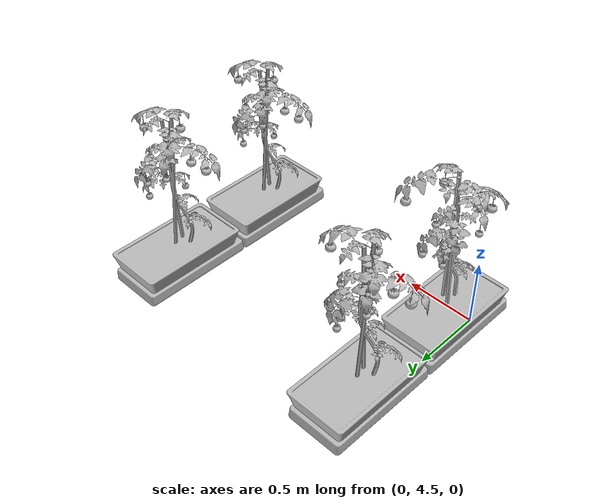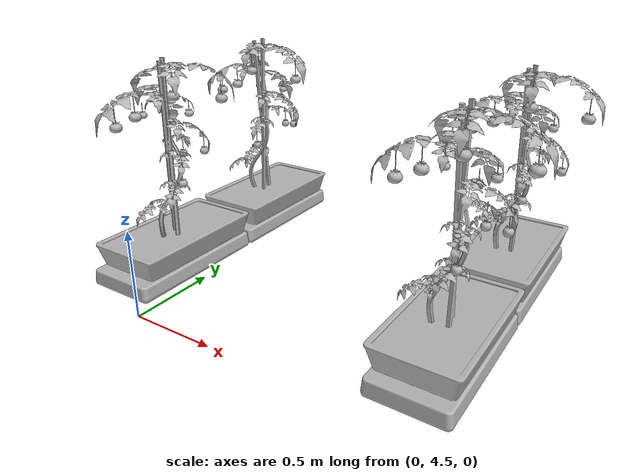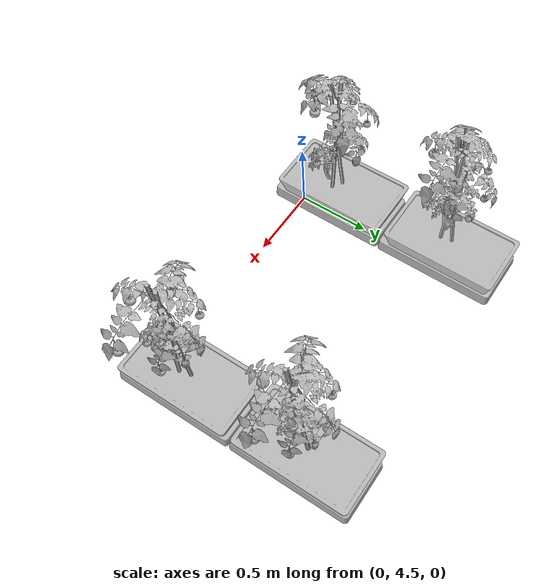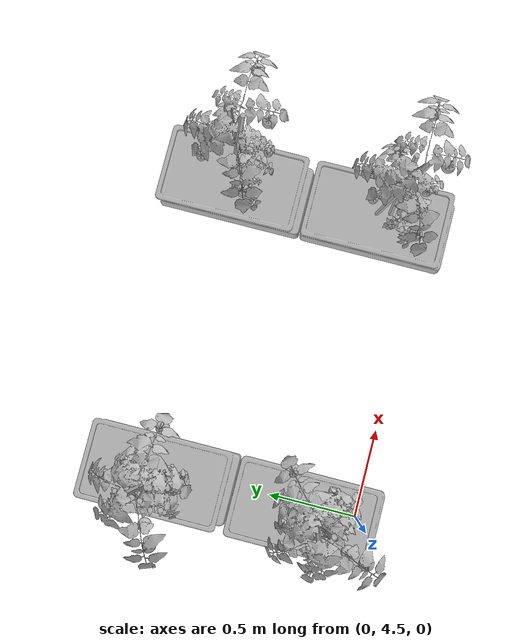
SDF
<sdf version="1.6">
 <world name="default">
  <model name="plant06">
   <static>0</static>
   <link name="tomato_plant_link">
    <inertial>
     <mass>20</mass>
     <inertia><ixx>1</ixx><ixy>0</ixy><ixz>0</ixz><iyy>1</iyy><iyz>0</iyz><izz>1</izz></inertia>
    </inertial>
    <visual name="visual">
     <geometry><mesh><uri>model://tomato_plant/meshes/tomato_plant.obj</uri></mesh></geometry>
    </visual>
    <collision name="collision">
     <pose>0 0 0.05 0 -0 0</pose>
     <geometry><box><size>0.1 0.1 0.1</size></box></geometry>
    </collision>
   </link>
   <link name="t_link_0">
    <pose>0.176111 0.046061 0.713729 0 -0 0</pose>
    <inertial>
     <mass>0.1</mass>
     <inertia><ixx>1</ixx><ixy>0</ixy><ixz>0</ixz><iyy>1</iyy><iyz>0</iyz><izz>1</izz></inertia>
    </inertial>
    <collision name="collision"><geometry><sphere><radius>0.02</radius></sphere></geometry></collision>
    <visual name="visual">
     <geometry><mesh><uri>model://green_tomato/meshes/green_tomato.obj</uri></mesh></geometry>
    </visual>
   </link>
   <joint name="t_joint_0" type="fixed">
    <parent>tomato_plant_link</parent>
    <child>t_link_0</child>
    <axis>
     <xyz>0 0 1</xyz>
     <use_parent_model_frame>1</use_parent_model_frame>
     <limit><lower>-1e+16</lower><upper>1e+16</upper></limit>
    </axis>
    <sensor name="force_torque" type="force_torque">
     <always_on>1</always_on>
     <update_rate>250</update_rate>
     <plugin name="breakable_0" filename="libBreakableJointPlugin.so">
      <breaking_force_N>10</breaking_force_N>
     </plugin>
    </sensor>
   </joint>
   <link name="t_link_1">
    <pose>0.063172 0.108629 0.685474 0 -0 0</pose>
    <inertial>
     <mass>0.1</mass>
     <inertia><ixx>1</ixx><ixy>0</ixy><ixz>0</ixz><iyy>1</iyy><iyz>0</iyz><izz>1</izz></inertia>
    </inertial>
    <collision name="collision"><geometry><sphere><radius>0.02</radius></sphere></geometry></collision>
    <visual name="visual">
     <geometry><mesh><uri>model://green_tomato/meshes/green_tomato.obj</uri></mesh></geometry>
    </visual>
   </link>
   <joint name="t_joint_1" type="fixed">
    <parent>tomato_plant_link</parent>
    <child>t_link_1</child>
    <axis>
     <xyz>0 0 1</xyz>
     <use_parent_model_frame>1</use_parent_model_frame>
     <limit><lower>-1e+16</lower><upper>1e+16</upper></limit>
    </axis>
    <sensor name="force_torque" type="force_torque">
     <always_on>1</always_on>
     <update_rate>250</update_rate>
     <plugin name="breakable_1" filename="libBreakableJointPlugin.so">
      <breaking_force_N>10</breaking_force_N>
     </plugin>
    </sensor>
   </joint>
   <link name="t_link_2">
    <pose>0.062027 -0.170581 0.614534 0 -0 0</pose>
    <inertial>
     <mass>0.1</mass>
     <inertia><ixx>1</ixx><ixy>0</ixy><ixz>0</ixz><iyy>1</iyy><iyz>0</iyz><izz>1</izz></inertia>
    </inertial>
    <collision name="collision"><geometry><sphere><radius>0.02</radius></sphere></geometry></collision>
    <visual name="visual">
     <geometry><mesh><uri>model://green_tomato/meshes/green_tomato.obj</uri></mesh></geometry>
    </visual>
   </link>
   <joint name="t_joint_2" type="fixed">
    <parent>tomato_plant_link</parent>
    <child>t_link_2</child>
    <axis>
     <xyz>0 0 1</xyz>
     <use_parent_model_frame>1</use_parent_model_frame>
     <limit><lower>-1e+16</lower><upper>1e+16</upper></limit>
    </axis>
    <sensor name="force_torque" type="force_torque">
     <always_on>1</always_on>
     <update_rate>250</update_rate>
     <plugin name="breakable_2" filename="libBreakableJointPlugin.so">
      <breaking_force_N>10</breaking_force_N>
     </plugin>
    </sensor>
   </joint>
   <link name="t_link_3">
    <pose>0.114746 0.0304 0.926457 0 -0 0</pose>
    <inertial>
     <mass>0.1</mass>
     <inertia><ixx>1</ixx><ixy>0</ixy><ixz>0</ixz><iyy>1</iyy><iyz>0</iyz><izz>1</izz></inertia>
    </inertial>
    <collision name="collision"><geometry><sphere><radius>0.02</radius></sphere></geometry></collision>
    <visual name="visual">
     <geometry><mesh><uri>model://yellow_tomato/meshes/yellow_tomato.obj</uri></mesh></geometry>
    </visual>
   </link>
   <joint name="t_joint_3" type="fixed">
    <parent>tomato_plant_link</parent>
    <child>t_link_3</child>
    <axis>
     <xyz>0 0 1</xyz>
     <use_parent_model_frame>1</use_parent_model_frame>
     <limit><lower>-1e+16</lower><upper>1e+16</upper></limit>
    </axis>
    <sensor name="force_torque" type="force_torque">
     <always_on>1</always_on>
     <update_rate>250</update_rate>
     <plugin name="breakable_3" filename="libBreakableJointPlugin.so">
      <breaking_force_N>10</breaking_force_N>
     </plugin>
    </sensor>
   </joint>
   <link name="t_link_4">
    <pose>0.003426 0.147925 0.840454 0 -0 0</pose>
    <inertial>
     <mass>0.1</mass>
     <inertia><ixx>1</ixx><ixy>0</ixy><ixz>0</ixz><iyy>1</iyy><iyz>0</iyz><izz>1</izz></inertia>
    </inertial>
    <collision name="collision"><geometry><sphere><radius>0.02</radius></sphere></geometry></collision>
    <visual name="visual">
     <geometry><mesh><uri>model://yellow_tomato/meshes/yellow_tomato.obj</uri></mesh></geometry>
    </visual>
   </link>
   <joint name="t_joint_4" type="fixed">
    <parent>tomato_plant_link</parent>
    <child>t_link_4</child>
    <axis>
     <xyz>0 0 1</xyz>
     <use_parent_model_frame>1</use_parent_model_frame>
     <limit><lower>-1e+16</lower><upper>1e+16</upper></limit>
    </axis>
    <sensor name="force_torque" type="force_torque">
     <always_on>1</always_on>
     <update_rate>250</update_rate>
     <plugin name="breakable_4" filename="libBreakableJointPlugin.so">
      <breaking_force_N>10</breaking_force_N>
     </plugin>
    </sensor>
   </joint>
   <link name="t_link_5">
    <pose>-0.12391 0.091553 0.91111 0 -0 0</pose>
    <inertial>
     <mass>0.1</mass>
     <inertia><ixx>1</ixx><ixy>0</ixy><ixz>0</ixz><iyy>1</iyy><iyz>0</iyz><izz>1</izz></inertia>
    </inertial>
    <collision name="collision"><geometry><sphere><radius>0.02</radius></sphere></geometry></collision>
    <visual name="visual">
     <geometry><mesh><uri>model://yellow_tomato/meshes/yellow_tomato.obj</uri></mesh></geometry>
    </visual>
   </link>
   <joint name="t_joint_5" type="fixed">
    <parent>tomato_plant_link</parent>
    <child>t_link_5</child>
    <axis>
     <xyz>0 0 1</xyz>
     <use_parent_model_frame>1</use_parent_model_frame>
     <limit><lower>-1e+16</lower><upper>1e+16</upper></limit>
    </axis>
    <sensor name="force_torque" type="force_torque">
     <always_on>1</always_on>
     <update_rate>250</update_rate>
     <plugin name="breakable_5" filename="libBreakableJointPlugin.so">
      <breaking_force_N>10</breaking_force_N>
     </plugin>
    </sensor>
   </joint>
   <link name="t_link_6">
    <pose>-0.23014 -0.132697 0.911579 0 -0 0</pose>
    <inertial>
     <mass>0.1</mass>
     <inertia><ixx>1</ixx><ixy>0</ixy><ixz>0</ixz><iyy>1</iyy><iyz>0</iyz><izz>1</izz></inertia>
    </inertial>
    <collision name="collision"><geometry><sphere><radius>0.03</radius></sphere></geometry></collision>
    <visual name="visual">
     <geometry><mesh><uri>model://red_tomato/meshes/red_tomato.obj</uri></mesh></geometry>
    </visual>
   </link>
   <joint name="t_joint_6" type="fixed">
    <parent>tomato_plant_link</parent>
    <child>t_link_6</child>
    <axis>
     <xyz>0 0 1</xyz>
     <use_parent_model_frame>1</use_parent_model_frame>
     <limit><lower>-1e+16</lower><upper>1e+16</upper></limit>
    </axis>
    <sensor name="force_torque" type="force_torque">
     <always_on>1</always_on>
     <update_rate>250</update_rate>
     <plugin name="breakable_6" filename="libBreakableJointPlugin.so">
      <breaking_force_N>10</breaking_force_N>
     </plugin>
    </sensor>
   </joint>
   <link name="t_link_7">
    <pose>-0.139776 -0.09326 0.950185 0 -0 0</pose>
    <inertial>
     <mass>0.1</mass>
     <inertia><ixx>1</ixx><ixy>0</ixy><ixz>0</ixz><iyy>1</iyy><iyz>0</iyz><izz>1</izz></inertia>
    </inertial>
    <collision name="collision"><geometry><sphere><radius>0.03</radius></sphere></geometry></collision>
    <visual name="visual">
     <geometry><mesh><uri>model://red_tomato/meshes/red_tomato.obj</uri></mesh></geometry>
    </visual>
   </link>
   <joint name="t_joint_7" type="fixed">
    <parent>tomato_plant_link</parent>
    <child>t_link_7</child>
    <axis>
     <xyz>0 0 1</xyz>
     <use_parent_model_frame>1</use_parent_model_frame>
     <limit><lower>-1e+16</lower><upper>1e+16</upper></limit>
    </axis>
    <sensor name="force_torque" type="force_torque">
     <always_on>1</always_on>
     <update_rate>250</update_rate>
     <plugin name="breakable_7" filename="libBreakableJointPlugin.so">
      <breaking_force_N>10</breaking_force_N>
     </plugin>
    </sensor>
   </joint>
   <link name="t_link_8">
    <pose>0.284181 -0.063758 1.01928 0 -0 0</pose>
    <inertial>
     <mass>0.1</mass>
     <inertia><ixx>1</ixx><ixy>0</ixy><ixz>0</ixz><iyy>1</iyy><iyz>0</iyz><izz>1</izz></inertia>
    </inertial>
    <collision name="collision"><geometry><sphere><radius>0.03</radius></sphere></geometry></collision>
    <visual name="visual">
     <geometry><mesh><uri>model://red_tomato/meshes/red_tomato.obj</uri></mesh></geometry>
    </visual>
   </link>
   <joint name="t_joint_8" type="fixed">
    <parent>tomato_plant_link</parent>
    <child>t_link_8</child>
    <axis>
     <xyz>0 0 1</xyz>
     <use_parent_model_frame>1</use_parent_model_frame>
     <limit><lower>-1e+16</lower><upper>1e+16</upper></limit>
    </axis>
    <sensor name="force_torque" type="force_torque">
     <always_on>1</always_on>
     <update_rate>250</update_rate>
     <plugin name="breakable_8" filename="libBreakableJointPlugin.so">
      <breaking_force_N>10</breaking_force_N>
     </plugin>
    </sensor>
   </joint>
   <link name="t_link_9">
    <pose>0.055319 -0.176349 1.06525 0 -0 0</pose>
    <inertial>
     <mass>0.1</mass>
     <inertia><ixx>1</ixx><ixy>0</ixy><ixz>0</ixz><iyy>1</iyy><iyz>0</iyz><izz>1</izz></inertia>
    </inertial>
    <collision name="collision"><geometry><sphere><radius>0.03</radius></sphere></geometry></collision>
    <visual name="visual">
     <geometry><mesh><uri>model://red_tomato/meshes/red_tomato.obj</uri></mesh></geometry>
    </visual>
   </link>
   <joint name="t_joint_9" type="fixed">
    <parent>tomato_plant_link</parent>
    <child>t_link_9</child>
    <axis>
     <xyz>0 0 1</xyz>
     <use_parent_model_frame>1</use_parent_model_frame>
     <limit><lower>-1e+16</lower><upper>1e+16</upper></limit>
    </axis>
    <sensor name="force_torque" type="force_torque">
     <always_on>1</always_on>
     <update_rate>250</update_rate>
     <plugin name="breakable_9" filename="libBreakableJointPlugin.so">
      <breaking_force_N>10</breaking_force_N>
     </plugin>
    </sensor>
   </joint>
   <pose>0.018727 4.81152 0.110433 0.000511 0.001752 0.771799</pose>
  </model>
  <model name="trough06">
   <static>1</static>
   <link name="trough_link">
    <visual name="visual"><geometry><mesh><uri>model://trough/meshes/truf.obj</uri></mesh></geometry></visual>
   </link>
   <pose>0 4.8 0.18 1.57 -0 1.57</pose>
  </model>
  <model name="plant07">
   <static>0</static>
   <link name="tomato_plant_link">
    <inertial>
     <mass>20</mass>
     <inertia><ixx>1</ixx><ixy>0</ixy><ixz>0</ixz><iyy>1</iyy><iyz>0</iyz><izz>1</izz></inertia>
    </inertial>
    <visual name="visual">
     <geometry><mesh><uri>model://tomato_plant/meshes/tomato_plant.obj</uri></mesh></geometry>
    </visual>
    <collision name="collision">
     <pose>0 0 0.05 0 -0 0</pose>
     <geometry><box><size>0.1 0.1 0.1</size></box></geometry>
    </collision>
   </link>
   <link name="t_link_0">
    <pose>0.176111 0.046061 0.713729 0 -0 0</pose>
    <inertial>
     <mass>0.1</mass>
     <inertia><ixx>1</ixx><ixy>0</ixy><ixz>0</ixz><iyy>1</iyy><iyz>0</iyz><izz>1</izz></inertia>
    </inertial>
    <collision name="collision"><geometry><sphere><radius>0.02</radius></sphere></geometry></collision>
    <visual name="visual">
     <geometry><mesh><uri>model://green_tomato/meshes/green_tomato.obj</uri></mesh></geometry>
    </visual>
   </link>
   <joint name="t_joint_0" type="fixed">
    <parent>tomato_plant_link</parent>
    <child>t_link_0</child>
    <axis>
     <xyz>0 0 1</xyz>
     <use_parent_model_frame>1</use_parent_model_frame>
     <limit><lower>-1e+16</lower><upper>1e+16</upper></limit>
    </axis>
    <sensor name="force_torque" type="force_torque">
     <always_on>1</always_on>
     <update_rate>250</update_rate>
     <plugin name="breakable_0" filename="libBreakableJointPlugin.so">
      <breaking_force_N>10</breaking_force_N>
     </plugin>
    </sensor>
   </joint>
   <link name="t_link_1">
    <pose>0.063172 0.108629 0.685474 0 -0 0</pose>
    <inertial>
     <mass>0.1</mass>
     <inertia><ixx>1</ixx><ixy>0</ixy><ixz>0</ixz><iyy>1</iyy><iyz>0</iyz><izz>1</izz></inertia>
    </inertial>
    <collision name="collision"><geometry><sphere><radius>0.02</radius></sphere></geometry></collision>
    <visual name="visual">
     <geometry><mesh><uri>model://green_tomato/meshes/green_tomato.obj</uri></mesh></geometry>
    </visual>
   </link>
   <joint name="t_joint_1" type="fixed">
    <parent>tomato_plant_link</parent>
    <child>t_link_1</child>
    <axis>
     <xyz>0 0 1</xyz>
     <use_parent_model_frame>1</use_parent_model_frame>
     <limit><lower>-1e+16</lower><upper>1e+16</upper></limit>
    </axis>
    <sensor name="force_torque" type="force_torque">
     <always_on>1</always_on>
     <update_rate>250</update_rate>
     <plugin name="breakable_1" filename="libBreakableJointPlugin.so">
      <breaking_force_N>10</breaking_force_N>
     </plugin>
    </sensor>
   </joint>
   <link name="t_link_2">
    <pose>0.062027 -0.170581 0.614534 0 -0 0</pose>
    <inertial>
     <mass>0.1</mass>
     <inertia><ixx>1</ixx><ixy>0</ixy><ixz>0</ixz><iyy>1</iyy><iyz>0</iyz><izz>1</izz></inertia>
    </inertial>
    <collision name="collision"><geometry><sphere><radius>0.02</radius></sphere></geometry></collision>
    <visual name="visual">
     <geometry><mesh><uri>model://green_tomato/meshes/green_tomato.obj</uri></mesh></geometry>
    </visual>
   </link>
   <joint name="t_joint_2" type="fixed">
    <parent>tomato_plant_link</parent>
    <child>t_link_2</child>
    <axis>
     <xyz>0 0 1</xyz>
     <use_parent_model_frame>1</use_parent_model_frame>
     <limit><lower>-1e+16</lower><upper>1e+16</upper></limit>
    </axis>
    <sensor name="force_torque" type="force_torque">
     <always_on>1</always_on>
     <update_rate>250</update_rate>
     <plugin name="breakable_2" filename="libBreakableJointPlugin.so">
      <breaking_force_N>10</breaking_force_N>
     </plugin>
    </sensor>
   </joint>
   <link name="t_link_3">
    <pose>0.114746 0.0304 0.926457 0 -0 0</pose>
    <inertial>
     <mass>0.1</mass>
     <inertia><ixx>1</ixx><ixy>0</ixy><ixz>0</ixz><iyy>1</iyy><iyz>0</iyz><izz>1</izz></inertia>
    </inertial>
    <collision name="collision"><geometry><sphere><radius>0.02</radius></sphere></geometry></collision>
    <visual name="visual">
     <geometry><mesh><uri>model://yellow_tomato/meshes/yellow_tomato.obj</uri></mesh></geometry>
    </visual>
   </link>
   <joint name="t_joint_3" type="fixed">
    <parent>tomato_plant_link</parent>
    <child>t_link_3</child>
    <axis>
     <xyz>0 0 1</xyz>
     <use_parent_model_frame>1</use_parent_model_frame>
     <limit><lower>-1e+16</lower><upper>1e+16</upper></limit>
    </axis>
    <sensor name="force_torque" type="force_torque">
     <always_on>1</always_on>
     <update_rate>250</update_rate>
     <plugin name="breakable_3" filename="libBreakableJointPlugin.so">
      <breaking_force_N>10</breaking_force_N>
     </plugin>
    </sensor>
   </joint>
   <link name="t_link_4">
    <pose>0.003426 0.147925 0.840454 0 -0 0</pose>
    <inertial>
     <mass>0.1</mass>
     <inertia><ixx>1</ixx><ixy>0</ixy><ixz>0</ixz><iyy>1</iyy><iyz>0</iyz><izz>1</izz></inertia>
    </inertial>
    <collision name="collision"><geometry><sphere><radius>0.02</radius></sphere></geometry></collision>
    <visual name="visual">
     <geometry><mesh><uri>model://yellow_tomato/meshes/yellow_tomato.obj</uri></mesh></geometry>
    </visual>
   </link>
   <joint name="t_joint_4" type="fixed">
    <parent>tomato_plant_link</parent>
    <child>t_link_4</child>
    <axis>
     <xyz>0 0 1</xyz>
     <use_parent_model_frame>1</use_parent_model_frame>
     <limit><lower>-1e+16</lower><upper>1e+16</upper></limit>
    </axis>
    <sensor name="force_torque" type="force_torque">
     <always_on>1</always_on>
     <update_rate>250</update_rate>
     <plugin name="breakable_4" filename="libBreakableJointPlugin.so">
      <breaking_force_N>10</breaking_force_N>
     </plugin>
    </sensor>
   </joint>
   <link name="t_link_5">
    <pose>-0.12391 0.091553 0.91111 0 -0 0</pose>
    <inertial>
     <mass>0.1</mass>
     <inertia><ixx>1</ixx><ixy>0</ixy><ixz>0</ixz><iyy>1</iyy><iyz>0</iyz><izz>1</izz></inertia>
    </inertial>
    <collision name="collision"><geometry><sphere><radius>0.02</radius></sphere></geometry></collision>
    <visual name="visual">
     <geometry><mesh><uri>model://yellow_tomato/meshes/yellow_tomato.obj</uri></mesh></geometry>
    </visual>
   </link>
   <joint name="t_joint_5" type="fixed">
    <parent>tomato_plant_link</parent>
    <child>t_link_5</child>
    <axis>
     <xyz>0 0 1</xyz>
     <use_parent_model_frame>1</use_parent_model_frame>
     <limit><lower>-1e+16</lower><upper>1e+16</upper></limit>
    </axis>
    <sensor name="force_torque" type="force_torque">
     <always_on>1</always_on>
     <update_rate>250</update_rate>
     <plugin name="breakable_5" filename="libBreakableJointPlugin.so">
      <breaking_force_N>10</breaking_force_N>
     </plugin>
    </sensor>
   </joint>
   <link name="t_link_6">
    <pose>-0.23014 -0.132697 0.911579 0 -0 0</pose>
    <inertial>
     <mass>0.1</mass>
     <inertia><ixx>1</ixx><ixy>0</ixy><ixz>0</ixz><iyy>1</iyy><iyz>0</iyz><izz>1</izz></inertia>
    </inertial>
    <collision name="collision"><geometry><sphere><radius>0.03</radius></sphere></geometry></collision>
    <visual name="visual">
     <geometry><mesh><uri>model://red_tomato/meshes/red_tomato.obj</uri></mesh></geometry>
    </visual>
   </link>
   <joint name="t_joint_6" type="fixed">
    <parent>tomato_plant_link</parent>
    <child>t_link_6</child>
    <axis>
     <xyz>0 0 1</xyz>
     <use_parent_model_frame>1</use_parent_model_frame>
     <limit><lower>-1e+16</lower><upper>1e+16</upper></limit>
    </axis>
    <sensor name="force_torque" type="force_torque">
     <always_on>1</always_on>
     <update_rate>250</update_rate>
     <plugin name="breakable_6" filename="libBreakableJointPlugin.so">
      <breaking_force_N>10</breaking_force_N>
     </plugin>
    </sensor>
   </joint>
   <link name="t_link_7">
    <pose>-0.139776 -0.09326 0.950185 0 -0 0</pose>
    <inertial>
     <mass>0.1</mass>
     <inertia><ixx>1</ixx><ixy>0</ixy><ixz>0</ixz><iyy>1</iyy><iyz>0</iyz><izz>1</izz></inertia>
    </inertial>
    <collision name="collision"><geometry><sphere><radius>0.03</radius></sphere></geometry></collision>
    <visual name="visual">
     <geometry><mesh><uri>model://red_tomato/meshes/red_tomato.obj</uri></mesh></geometry>
    </visual>
   </link>
   <joint name="t_joint_7" type="fixed">
    <parent>tomato_plant_link</parent>
    <child>t_link_7</child>
    <axis>
     <xyz>0 0 1</xyz>
     <use_parent_model_frame>1</use_parent_model_frame>
     <limit><lower>-1e+16</lower><upper>1e+16</upper></limit>
    </axis>
    <sensor name="force_torque" type="force_torque">
     <always_on>1</always_on>
     <update_rate>250</update_rate>
     <plugin name="breakable_7" filename="libBreakableJointPlugin.so">
      <breaking_force_N>10</breaking_force_N>
     </plugin>
    </sensor>
   </joint>
   <link name="t_link_8">
    <pose>0.284181 -0.063758 1.01928 0 -0 0</pose>
    <inertial>
     <mass>0.1</mass>
     <inertia><ixx>1</ixx><ixy>0</ixy><ixz>0</ixz><iyy>1</iyy><iyz>0</iyz><izz>1</izz></inertia>
    </inertial>
    <collision name="collision"><geometry><sphere><radius>0.03</radius></sphere></geometry></collision>
    <visual name="visual">
     <geometry><mesh><uri>model://red_tomato/meshes/red_tomato.obj</uri></mesh></geometry>
    </visual>
   </link>
   <joint name="t_joint_8" type="fixed">
    <parent>tomato_plant_link</parent>
    <child>t_link_8</child>
    <axis>
     <xyz>0 0 1</xyz>
     <use_parent_model_frame>1</use_parent_model_frame>
     <limit><lower>-1e+16</lower><upper>1e+16</upper></limit>
    </axis>
    <sensor name="force_torque" type="force_torque">
     <always_on>1</always_on>
     <update_rate>250</update_rate>
     <plugin name="breakable_8" filename="libBreakableJointPlugin.so">
      <breaking_force_N>10</breaking_force_N>
     </plugin>
    </sensor>
   </joint>
   <link name="t_link_9">
    <pose>0.055319 -0.176349 1.06525 0 -0 0</pose>
    <inertial>
     <mass>0.1</mass>
     <inertia><ixx>1</ixx><ixy>0</ixy><ixz>0</ixz><iyy>1</iyy><iyz>0</iyz><izz>1</izz></inertia>
    </inertial>
    <collision name="collision"><geometry><sphere><radius>0.03</radius></sphere></geometry></collision>
    <visual name="visual">
     <geometry><mesh><uri>model://red_tomato/meshes/red_tomato.obj</uri></mesh></geometry>
    </visual>
   </link>
   <joint name="t_joint_9" type="fixed">
    <parent>tomato_plant_link</parent>
    <child>t_link_9</child>
    <axis>
     <xyz>0 0 1</xyz>
     <use_parent_model_frame>1</use_parent_model_frame>
     <limit><lower>-1e+16</lower><upper>1e+16</upper></limit>
    </axis>
    <sensor name="force_torque" type="force_torque">
     <always_on>1</always_on>
     <update_rate>250</update_rate>
     <plugin name="breakable_9" filename="libBreakableJointPlugin.so">
      <breaking_force_N>10</breaking_force_N>
     </plugin>
    </sensor>
   </joint>
   <pose>0.02016 5.61226 0.109795 -0.000846 0.001639 -0.013684</pose>
  </model>
  <model name="trough07">
   <static>1</static>
   <link name="trough_link">
    <visual name="visual"><geometry><mesh><uri>model://trough/meshes/truf.obj</uri></mesh></geometry></visual>
   </link>
   <pose>0 5.6 0.18 1.57 -0 1.57</pose>
  </model>
  <model name="plant16">
   <static>0</static>
   <link name="tomato_plant_link">
    <inertial>
     <mass>20</mass>
     <inertia><ixx>1</ixx><ixy>0</ixy><ixz>0</ixz><iyy>1</iyy><iyz>0</iyz><izz>1</izz></inertia>
    </inertial>
    <visual name="visual">
     <geometry><mesh><uri>model://tomato_plant/meshes/tomato_plant.obj</uri></mesh></geometry>
    </visual>
    <collision name="collision">
     <pose>0 0 0.05 0 -0 0</pose>
     <geometry><box><size>0.1 0.1 0.1</size></box></geometry>
    </collision>
   </link>
   <link name="t_link_0">
    <pose>0.176111 0.046061 0.713729 0 -0 0</pose>
    <inertial>
     <mass>0.1</mass>
     <inertia><ixx>1</ixx><ixy>0</ixy><ixz>0</ixz><iyy>1</iyy><iyz>0</iyz><izz>1</izz></inertia>
    </inertial>
    <collision name="collision"><geometry><sphere><radius>0.02</radius></sphere></geometry></collision>
    <visual name="visual">
     <geometry><mesh><uri>model://green_tomato/meshes/green_tomato.obj</uri></mesh></geometry>
    </visual>
   </link>
   <joint name="t_joint_0" type="fixed">
    <parent>tomato_plant_link</parent>
    <child>t_link_0</child>
    <axis>
     <xyz>0 0 1</xyz>
     <use_parent_model_frame>1</use_parent_model_frame>
     <limit><lower>-1e+16</lower><upper>1e+16</upper></limit>
    </axis>
    <sensor name="force_torque" type="force_torque">
     <always_on>1</always_on>
     <update_rate>250</update_rate>
     <plugin name="breakable_0" filename="libBreakableJointPlugin.so">
      <breaking_force_N>10</breaking_force_N>
     </plugin>
    </sensor>
   </joint>
   <link name="t_link_1">
    <pose>0.063172 0.108629 0.685474 0 -0 0</pose>
    <inertial>
     <mass>0.1</mass>
     <inertia><ixx>1</ixx><ixy>0</ixy><ixz>0</ixz><iyy>1</iyy><iyz>0</iyz><izz>1</izz></inertia>
    </inertial>
    <collision name="collision"><geometry><sphere><radius>0.02</radius></sphere></geometry></collision>
    <visual name="visual">
     <geometry><mesh><uri>model://green_tomato/meshes/green_tomato.obj</uri></mesh></geometry>
    </visual>
   </link>
   <joint name="t_joint_1" type="fixed">
    <parent>tomato_plant_link</parent>
    <child>t_link_1</child>
    <axis>
     <xyz>0 0 1</xyz>
     <use_parent_model_frame>1</use_parent_model_frame>
     <limit><lower>-1e+16</lower><upper>1e+16</upper></limit>
    </axis>
    <sensor name="force_torque" type="force_torque">
     <always_on>1</always_on>
     <update_rate>250</update_rate>
     <plugin name="breakable_1" filename="libBreakableJointPlugin.so">
      <breaking_force_N>10</breaking_force_N>
     </plugin>
    </sensor>
   </joint>
   <link name="t_link_2">
    <pose>0.062027 -0.170581 0.614534 0 -0 0</pose>
    <inertial>
     <mass>0.1</mass>
     <inertia><ixx>1</ixx><ixy>0</ixy><ixz>0</ixz><iyy>1</iyy><iyz>0</iyz><izz>1</izz></inertia>
    </inertial>
    <collision name="collision"><geometry><sphere><radius>0.02</radius></sphere></geometry></collision>
    <visual name="visual">
     <geometry><mesh><uri>model://green_tomato/meshes/green_tomato.obj</uri></mesh></geometry>
    </visual>
   </link>
   <joint name="t_joint_2" type="fixed">
    <parent>tomato_plant_link</parent>
    <child>t_link_2</child>
    <axis>
     <xyz>0 0 1</xyz>
     <use_parent_model_frame>1</use_parent_model_frame>
     <limit><lower>-1e+16</lower><upper>1e+16</upper></limit>
    </axis>
    <sensor name="force_torque" type="force_torque">
     <always_on>1</always_on>
     <update_rate>250</update_rate>
     <plugin name="breakable_2" filename="libBreakableJointPlugin.so">
      <breaking_force_N>10</breaking_force_N>
     </plugin>
    </sensor>
   </joint>
   <link name="t_link_3">
    <pose>0.114746 0.0304 0.926457 0 -0 0</pose>
    <inertial>
     <mass>0.1</mass>
     <inertia><ixx>1</ixx><ixy>0</ixy><ixz>0</ixz><iyy>1</iyy><iyz>0</iyz><izz>1</izz></inertia>
    </inertial>
    <collision name="collision"><geometry><sphere><radius>0.02</radius></sphere></geometry></collision>
    <visual name="visual">
     <geometry><mesh><uri>model://yellow_tomato/meshes/yellow_tomato.obj</uri></mesh></geometry>
    </visual>
   </link>
   <joint name="t_joint_3" type="fixed">
    <parent>tomato_plant_link</parent>
    <child>t_link_3</child>
    <axis>
     <xyz>0 0 1</xyz>
     <use_parent_model_frame>1</use_parent_model_frame>
     <limit><lower>-1e+16</lower><upper>1e+16</upper></limit>
    </axis>
    <sensor name="force_torque" type="force_torque">
     <always_on>1</always_on>
     <update_rate>250</update_rate>
     <plugin name="breakable_3" filename="libBreakableJointPlugin.so">
      <breaking_force_N>10</breaking_force_N>
     </plugin>
    </sensor>
   </joint>
   <link name="t_link_4">
    <pose>0.003426 0.147925 0.840454 0 -0 0</pose>
    <inertial>
     <mass>0.1</mass>
     <inertia><ixx>1</ixx><ixy>0</ixy><ixz>0</ixz><iyy>1</iyy><iyz>0</iyz><izz>1</izz></inertia>
    </inertial>
    <collision name="collision"><geometry><sphere><radius>0.02</radius></sphere></geometry></collision>
    <visual name="visual">
     <geometry><mesh><uri>model://yellow_tomato/meshes/yellow_tomato.obj</uri></mesh></geometry>
    </visual>
   </link>
   <joint name="t_joint_4" type="fixed">
    <parent>tomato_plant_link</parent>
    <child>t_link_4</child>
    <axis>
     <xyz>0 0 1</xyz>
     <use_parent_model_frame>1</use_parent_model_frame>
     <limit><lower>-1e+16</lower><upper>1e+16</upper></limit>
    </axis>
    <sensor name="force_torque" type="force_torque">
     <always_on>1</always_on>
     <update_rate>250</update_rate>
     <plugin name="breakable_4" filename="libBreakableJointPlugin.so">
      <breaking_force_N>10</breaking_force_N>
     </plugin>
    </sensor>
   </joint>
   <link name="t_link_5">
    <pose>-0.12391 0.091553 0.91111 0 -0 0</pose>
    <inertial>
     <mass>0.1</mass>
     <inertia><ixx>1</ixx><ixy>0</ixy><ixz>0</ixz><iyy>1</iyy><iyz>0</iyz><izz>1</izz></inertia>
    </inertial>
    <collision name="collision"><geometry><sphere><radius>0.02</radius></sphere></geometry></collision>
    <visual name="visual">
     <geometry><mesh><uri>model://yellow_tomato/meshes/yellow_tomato.obj</uri></mesh></geometry>
    </visual>
   </link>
   <joint name="t_joint_5" type="fixed">
    <parent>tomato_plant_link</parent>
    <child>t_link_5</child>
    <axis>
     <xyz>0 0 1</xyz>
     <use_parent_model_frame>1</use_parent_model_frame>
     <limit><lower>-1e+16</lower><upper>1e+16</upper></limit>
    </axis>
    <sensor name="force_torque" type="force_torque">
     <always_on>1</always_on>
     <update_rate>250</update_rate>
     <plugin name="breakable_5" filename="libBreakableJointPlugin.so">
      <breaking_force_N>10</breaking_force_N>
     </plugin>
    </sensor>
   </joint>
   <link name="t_link_6">
    <pose>-0.23014 -0.132697 0.911579 0 -0 0</pose>
    <inertial>
     <mass>0.1</mass>
     <inertia><ixx>1</ixx><ixy>0</ixy><ixz>0</ixz><iyy>1</iyy><iyz>0</iyz><izz>1</izz></inertia>
    </inertial>
    <collision name="collision"><geometry><sphere><radius>0.03</radius></sphere></geometry></collision>
    <visual name="visual">
     <geometry><mesh><uri>model://red_tomato/meshes/red_tomato.obj</uri></mesh></geometry>
    </visual>
   </link>
   <joint name="t_joint_6" type="fixed">
    <parent>tomato_plant_link</parent>
    <child>t_link_6</child>
    <axis>
     <xyz>0 0 1</xyz>
     <use_parent_model_frame>1</use_parent_model_frame>
     <limit><lower>-1e+16</lower><upper>1e+16</upper></limit>
    </axis>
    <sensor name="force_torque" type="force_torque">
     <always_on>1</always_on>
     <update_rate>250</update_rate>
     <plugin name="breakable_6" filename="libBreakableJointPlugin.so">
      <breaking_force_N>10</breaking_force_N>
     </plugin>
    </sensor>
   </joint>
   <link name="t_link_7">
    <pose>-0.139776 -0.09326 0.950185 0 -0 0</pose>
    <inertial>
     <mass>0.1</mass>
     <inertia><ixx>1</ixx><ixy>0</ixy><ixz>0</ixz><iyy>1</iyy><iyz>0</iyz><izz>1</izz></inertia>
    </inertial>
    <collision name="collision"><geometry><sphere><radius>0.03</radius></sphere></geometry></collision>
    <visual name="visual">
     <geometry><mesh><uri>model://red_tomato/meshes/red_tomato.obj</uri></mesh></geometry>
    </visual>
   </link>
   <joint name="t_joint_7" type="fixed">
    <parent>tomato_plant_link</parent>
    <child>t_link_7</child>
    <axis>
     <xyz>0 0 1</xyz>
     <use_parent_model_frame>1</use_parent_model_frame>
     <limit><lower>-1e+16</lower><upper>1e+16</upper></limit>
    </axis>
    <sensor name="force_torque" type="force_torque">
     <always_on>1</always_on>
     <update_rate>250</update_rate>
     <plugin name="breakable_7" filename="libBreakableJointPlugin.so">
      <breaking_force_N>10</breaking_force_N>
     </plugin>
    </sensor>
   </joint>
   <link name="t_link_8">
    <pose>0.284181 -0.063758 1.01928 0 -0 0</pose>
    <inertial>
     <mass>0.1</mass>
     <inertia><ixx>1</ixx><ixy>0</ixy><ixz>0</ixz><iyy>1</iyy><iyz>0</iyz><izz>1</izz></inertia>
    </inertial>
    <collision name="collision"><geometry><sphere><radius>0.03</radius></sphere></geometry></collision>
    <visual name="visual">
     <geometry><mesh><uri>model://red_tomato/meshes/red_tomato.obj</uri></mesh></geometry>
    </visual>
   </link>
   <joint name="t_joint_8" type="fixed">
    <parent>tomato_plant_link</parent>
    <child>t_link_8</child>
    <axis>
     <xyz>0 0 1</xyz>
     <use_parent_model_frame>1</use_parent_model_frame>
     <limit><lower>-1e+16</lower><upper>1e+16</upper></limit>
    </axis>
    <sensor name="force_torque" type="force_torque">
     <always_on>1</always_on>
     <update_rate>250</update_rate>
     <plugin name="breakable_8" filename="libBreakableJointPlugin.so">
      <breaking_force_N>10</breaking_force_N>
     </plugin>
    </sensor>
   </joint>
   <link name="t_link_9">
    <pose>0.055319 -0.176349 1.06525 0 -0 0</pose>
    <inertial>
     <mass>0.1</mass>
     <inertia><ixx>1</ixx><ixy>0</ixy><ixz>0</ixz><iyy>1</iyy><iyz>0</iyz><izz>1</izz></inertia>
    </inertial>
    <collision name="collision"><geometry><sphere><radius>0.03</radius></sphere></geometry></collision>
    <visual name="visual">
     <geometry><mesh><uri>model://red_tomato/meshes/red_tomato.obj</uri></mesh></geometry>
    </visual>
   </link>
   <joint name="t_joint_9" type="fixed">
    <parent>tomato_plant_link</parent>
    <child>t_link_9</child>
    <axis>
     <xyz>0 0 1</xyz>
     <use_parent_model_frame>1</use_parent_model_frame>
     <limit><lower>-1e+16</lower><upper>1e+16</upper></limit>
    </axis>
    <sensor name="force_torque" type="force_torque">
     <always_on>1</always_on>
     <update_rate>250</update_rate>
     <plugin name="breakable_9" filename="libBreakableJointPlugin.so">
      <breaking_force_N>10</breaking_force_N>
     </plugin>
    </sensor>
   </joint>
   <pose>1.64005 4.81219 0.107965 -0.000832 0.001624 -0.013603</pose>
  </model>
  <model name="trough16">
   <static>1</static>
   <link name="trough_link">
    <visual name="visual"><geometry><mesh><uri>model://trough/meshes/truf.obj</uri></mesh></geometry></visual>
   </link>
   <pose>1.62 4.8 0.18 1.57 -0 1.57</pose>
  </model>
  <model name="plant17">
   <static>0</static>
   <link name="tomato_plant_link">
    <inertial>
     <mass>20</mass>
     <inertia><ixx>1</ixx><ixy>0</ixy><ixz>0</ixz><iyy>1</iyy><iyz>0</iyz><izz>1</izz></inertia>
    </inertial>
    <visual name="visual">
     <geometry><mesh><uri>model://tomato_plant/meshes/tomato_plant.obj</uri></mesh></geometry>
    </visual>
    <collision name="collision">
     <pose>0 0 0.05 0 -0 0</pose>
     <geometry><box><size>0.1 0.1 0.1</size></box></geometry>
    </collision>
   </link>
   <link name="t_link_0">
    <pose>0.176111 0.046061 0.713729 0 -0 0</pose>
    <inertial>
     <mass>0.1</mass>
     <inertia><ixx>1</ixx><ixy>0</ixy><ixz>0</ixz><iyy>1</iyy><iyz>0</iyz><izz>1</izz></inertia>
    </inertial>
    <collision name="collision"><geometry><sphere><radius>0.02</radius></sphere></geometry></collision>
    <visual name="visual">
     <geometry><mesh><uri>model://green_tomato/meshes/green_tomato.obj</uri></mesh></geometry>
    </visual>
   </link>
   <joint name="t_joint_0" type="fixed">
    <parent>tomato_plant_link</parent>
    <child>t_link_0</child>
    <axis>
     <xyz>0 0 1</xyz>
     <use_parent_model_frame>1</use_parent_model_frame>
     <limit><lower>-1e+16</lower><upper>1e+16</upper></limit>
    </axis>
    <sensor name="force_torque" type="force_torque">
     <always_on>1</always_on>
     <update_rate>250</update_rate>
     <plugin name="breakable_0" filename="libBreakableJointPlugin.so">
      <breaking_force_N>10</breaking_force_N>
     </plugin>
    </sensor>
   </joint>
   <link name="t_link_1">
    <pose>0.063172 0.108629 0.685474 0 -0 0</pose>
    <inertial>
     <mass>0.1</mass>
     <inertia><ixx>1</ixx><ixy>0</ixy><ixz>0</ixz><iyy>1</iyy><iyz>0</iyz><izz>1</izz></inertia>
    </inertial>
    <collision name="collision"><geometry><sphere><radius>0.02</radius></sphere></geometry></collision>
    <visual name="visual">
     <geometry><mesh><uri>model://green_tomato/meshes/green_tomato.obj</uri></mesh></geometry>
    </visual>
   </link>
   <joint name="t_joint_1" type="fixed">
    <parent>tomato_plant_link</parent>
    <child>t_link_1</child>
    <axis>
     <xyz>0 0 1</xyz>
     <use_parent_model_frame>1</use_parent_model_frame>
     <limit><lower>-1e+16</lower><upper>1e+16</upper></limit>
    </axis>
    <sensor name="force_torque" type="force_torque">
     <always_on>1</always_on>
     <update_rate>250</update_rate>
     <plugin name="breakable_1" filename="libBreakableJointPlugin.so">
      <breaking_force_N>10</breaking_force_N>
     </plugin>
    </sensor>
   </joint>
   <link name="t_link_2">
    <pose>0.062027 -0.170581 0.614534 0 -0 0</pose>
    <inertial>
     <mass>0.1</mass>
     <inertia><ixx>1</ixx><ixy>0</ixy><ixz>0</ixz><iyy>1</iyy><iyz>0</iyz><izz>1</izz></inertia>
    </inertial>
    <collision name="collision"><geometry><sphere><radius>0.02</radius></sphere></geometry></collision>
    <visual name="visual">
     <geometry><mesh><uri>model://green_tomato/meshes/green_tomato.obj</uri></mesh></geometry>
    </visual>
   </link>
   <joint name="t_joint_2" type="fixed">
    <parent>tomato_plant_link</parent>
    <child>t_link_2</child>
    <axis>
     <xyz>0 0 1</xyz>
     <use_parent_model_frame>1</use_parent_model_frame>
     <limit><lower>-1e+16</lower><upper>1e+16</upper></limit>
    </axis>
    <sensor name="force_torque" type="force_torque">
     <always_on>1</always_on>
     <update_rate>250</update_rate>
     <plugin name="breakable_2" filename="libBreakableJointPlugin.so">
      <breaking_force_N>10</breaking_force_N>
     </plugin>
    </sensor>
   </joint>
   <link name="t_link_3">
    <pose>0.114746 0.0304 0.926457 0 -0 0</pose>
    <inertial>
     <mass>0.1</mass>
     <inertia><ixx>1</ixx><ixy>0</ixy><ixz>0</ixz><iyy>1</iyy><iyz>0</iyz><izz>1</izz></inertia>
    </inertial>
    <collision name="collision"><geometry><sphere><radius>0.02</radius></sphere></geometry></collision>
    <visual name="visual">
     <geometry><mesh><uri>model://yellow_tomato/meshes/yellow_tomato.obj</uri></mesh></geometry>
    </visual>
   </link>
   <joint name="t_joint_3" type="fixed">
    <parent>tomato_plant_link</parent>
    <child>t_link_3</child>
    <axis>
     <xyz>0 0 1</xyz>
     <use_parent_model_frame>1</use_parent_model_frame>
     <limit><lower>-1e+16</lower><upper>1e+16</upper></limit>
    </axis>
    <sensor name="force_torque" type="force_torque">
     <always_on>1</always_on>
     <update_rate>250</update_rate>
     <plugin name="breakable_3" filename="libBreakableJointPlugin.so">
      <breaking_force_N>10</breaking_force_N>
     </plugin>
    </sensor>
   </joint>
   <link name="t_link_4">
    <pose>0.003426 0.147925 0.840454 0 -0 0</pose>
    <inertial>
     <mass>0.1</mass>
     <inertia><ixx>1</ixx><ixy>0</ixy><ixz>0</ixz><iyy>1</iyy><iyz>0</iyz><izz>1</izz></inertia>
    </inertial>
    <collision name="collision"><geometry><sphere><radius>0.02</radius></sphere></geometry></collision>
    <visual name="visual">
     <geometry><mesh><uri>model://yellow_tomato/meshes/yellow_tomato.obj</uri></mesh></geometry>
    </visual>
   </link>
   <joint name="t_joint_4" type="fixed">
    <parent>tomato_plant_link</parent>
    <child>t_link_4</child>
    <axis>
     <xyz>0 0 1</xyz>
     <use_parent_model_frame>1</use_parent_model_frame>
     <limit><lower>-1e+16</lower><upper>1e+16</upper></limit>
    </axis>
    <sensor name="force_torque" type="force_torque">
     <always_on>1</always_on>
     <update_rate>250</update_rate>
     <plugin name="breakable_4" filename="libBreakableJointPlugin.so">
      <breaking_force_N>10</breaking_force_N>
     </plugin>
    </sensor>
   </joint>
   <link name="t_link_5">
    <pose>-0.12391 0.091553 0.91111 0 -0 0</pose>
    <inertial>
     <mass>0.1</mass>
     <inertia><ixx>1</ixx><ixy>0</ixy><ixz>0</ixz><iyy>1</iyy><iyz>0</iyz><izz>1</izz></inertia>
    </inertial>
    <collision name="collision"><geometry><sphere><radius>0.02</radius></sphere></geometry></collision>
    <visual name="visual">
     <geometry><mesh><uri>model://yellow_tomato/meshes/yellow_tomato.obj</uri></mesh></geometry>
    </visual>
   </link>
   <joint name="t_joint_5" type="fixed">
    <parent>tomato_plant_link</parent>
    <child>t_link_5</child>
    <axis>
     <xyz>0 0 1</xyz>
     <use_parent_model_frame>1</use_parent_model_frame>
     <limit><lower>-1e+16</lower><upper>1e+16</upper></limit>
    </axis>
    <sensor name="force_torque" type="force_torque">
     <always_on>1</always_on>
     <update_rate>250</update_rate>
     <plugin name="breakable_5" filename="libBreakableJointPlugin.so">
      <breaking_force_N>10</breaking_force_N>
     </plugin>
    </sensor>
   </joint>
   <link name="t_link_6">
    <pose>-0.23014 -0.132697 0.911579 0 -0 0</pose>
    <inertial>
     <mass>0.1</mass>
     <inertia><ixx>1</ixx><ixy>0</ixy><ixz>0</ixz><iyy>1</iyy><iyz>0</iyz><izz>1</izz></inertia>
    </inertial>
    <collision name="collision"><geometry><sphere><radius>0.03</radius></sphere></geometry></collision>
    <visual name="visual">
     <geometry><mesh><uri>model://red_tomato/meshes/red_tomato.obj</uri></mesh></geometry>
    </visual>
   </link>
   <joint name="t_joint_6" type="fixed">
    <parent>tomato_plant_link</parent>
    <child>t_link_6</child>
    <axis>
     <xyz>0 0 1</xyz>
     <use_parent_model_frame>1</use_parent_model_frame>
     <limit><lower>-1e+16</lower><upper>1e+16</upper></limit>
    </axis>
    <sensor name="force_torque" type="force_torque">
     <always_on>1</always_on>
     <update_rate>250</update_rate>
     <plugin name="breakable_6" filename="libBreakableJointPlugin.so">
      <breaking_force_N>10</breaking_force_N>
     </plugin>
    </sensor>
   </joint>
   <link name="t_link_7">
    <pose>-0.139776 -0.09326 0.950185 0 -0 0</pose>
    <inertial>
     <mass>0.1</mass>
     <inertia><ixx>1</ixx><ixy>0</ixy><ixz>0</ixz><iyy>1</iyy><iyz>0</iyz><izz>1</izz></inertia>
    </inertial>
    <collision name="collision"><geometry><sphere><radius>0.03</radius></sphere></geometry></collision>
    <visual name="visual">
     <geometry><mesh><uri>model://red_tomato/meshes/red_tomato.obj</uri></mesh></geometry>
    </visual>
   </link>
   <joint name="t_joint_7" type="fixed">
    <parent>tomato_plant_link</parent>
    <child>t_link_7</child>
    <axis>
     <xyz>0 0 1</xyz>
     <use_parent_model_frame>1</use_parent_model_frame>
     <limit><lower>-1e+16</lower><upper>1e+16</upper></limit>
    </axis>
    <sensor name="force_torque" type="force_torque">
     <always_on>1</always_on>
     <update_rate>250</update_rate>
     <plugin name="breakable_7" filename="libBreakableJointPlugin.so">
      <breaking_force_N>10</breaking_force_N>
     </plugin>
    </sensor>
   </joint>
   <link name="t_link_8">
    <pose>0.284181 -0.063758 1.01928 0 -0 0</pose>
    <inertial>
     <mass>0.1</mass>
     <inertia><ixx>1</ixx><ixy>0</ixy><ixz>0</ixz><iyy>1</iyy><iyz>0</iyz><izz>1</izz></inertia>
    </inertial>
    <collision name="collision"><geometry><sphere><radius>0.03</radius></sphere></geometry></collision>
    <visual name="visual">
     <geometry><mesh><uri>model://red_tomato/meshes/red_tomato.obj</uri></mesh></geometry>
    </visual>
   </link>
   <joint name="t_joint_8" type="fixed">
    <parent>tomato_plant_link</parent>
    <child>t_link_8</child>
    <axis>
     <xyz>0 0 1</xyz>
     <use_parent_model_frame>1</use_parent_model_frame>
     <limit><lower>-1e+16</lower><upper>1e+16</upper></limit>
    </axis>
    <sensor name="force_torque" type="force_torque">
     <always_on>1</always_on>
     <update_rate>250</update_rate>
     <plugin name="breakable_8" filename="libBreakableJointPlugin.so">
      <breaking_force_N>10</breaking_force_N>
     </plugin>
    </sensor>
   </joint>
   <link name="t_link_9">
    <pose>0.055319 -0.176349 1.06525 0 -0 0</pose>
    <inertial>
     <mass>0.1</mass>
     <inertia><ixx>1</ixx><ixy>0</ixy><ixz>0</ixz><iyy>1</iyy><iyz>0</iyz><izz>1</izz></inertia>
    </inertial>
    <collision name="collision"><geometry><sphere><radius>0.03</radius></sphere></geometry></collision>
    <visual name="visual">
     <geometry><mesh><uri>model://red_tomato/meshes/red_tomato.obj</uri></mesh></geometry>
    </visual>
   </link>
   <joint name="t_joint_9" type="fixed">
    <parent>tomato_plant_link</parent>
    <child>t_link_9</child>
    <axis>
     <xyz>0 0 1</xyz>
     <use_parent_model_frame>1</use_parent_model_frame>
     <limit><lower>-1e+16</lower><upper>1e+16</upper></limit>
    </axis>
    <sensor name="force_torque" type="force_torque">
     <always_on>1</always_on>
     <update_rate>250</update_rate>
     <plugin name="breakable_9" filename="libBreakableJointPlugin.so">
      <breaking_force_N>10</breaking_force_N>
     </plugin>
    </sensor>
   </joint>
   <pose>1.64003 5.61219 0.10733 -0.000832 0.001624 -0.013593</pose>
  </model>
  <model name="trough17">
   <static>1</static>
   <link name="trough_link">
    <visual name="visual"><geometry><mesh><uri>model://trough/meshes/truf.obj</uri></mesh></geometry></visual>
   </link>
   <pose>1.62 5.6 0.18 1.57 -0 1.57</pose>
  </model>
 </world>
</sdf>
